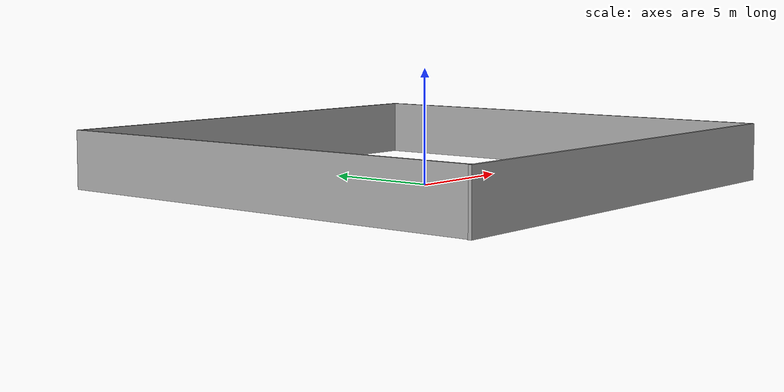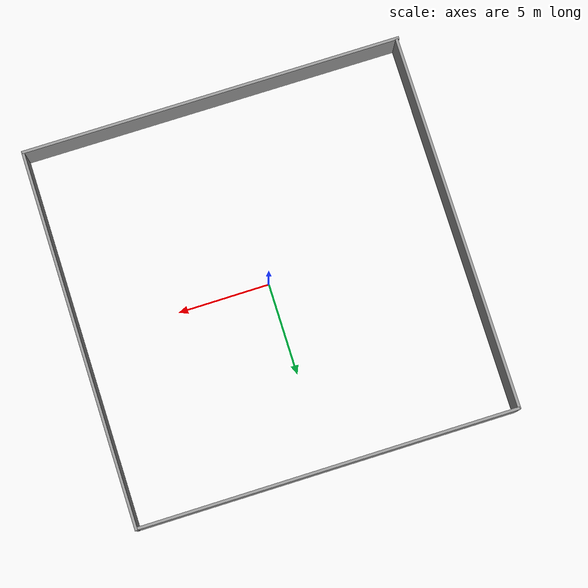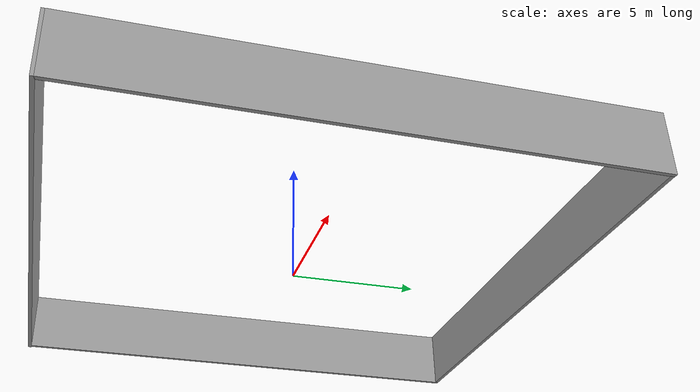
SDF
<?xml version='1.0'?>
<sdf version='1.6'>
  <model name='enclosedWalls'>
    <pose frame=''>0.000237 0.041222 0 0 -0 0</pose>
    <link name='Wall_13'>
      <collision name='Wall_13_Collision'>
        <geometry>
          <box>
            <size>20.75 0.15 2.5</size>
          </box>
        </geometry>
        <pose frame=''>0 0 1.25 0 -0 0</pose>
      </collision>
      <visual name='Wall_13_Visual'>
        <pose frame=''>0 0 1.25 0 -0 0</pose>
        <geometry>
          <box>
            <size>20.75 0.15 2.5</size>
          </box>
        </geometry>
        <material>
          <script>
            <uri>file://media/materials/scripts/gazebo.material</uri>
            <name>Gazebo/Grey</name>
          </script>
          <ambient>1 1 1 1</ambient>
        </material>
        <meta>
          <layer>0</layer>
        </meta>
      </visual>
      <pose frame=''>-0.003832 -10.2353 0 0 -0 0</pose>
    </link>
    <link name='Wall_4'>
      <collision name='Wall_4_Collision'>
        <geometry>
          <box>
            <size>20.5 0.15 2.5</size>
          </box>
        </geometry>
        <pose frame=''>0 0 1.25 0 -0 0</pose>
      </collision>
      <visual name='Wall_4_Visual'>
        <pose frame=''>0 0 1.25 0 -0 0</pose>
        <geometry>
          <box>
            <size>20.5 0.15 2.5</size>
          </box>
        </geometry>
        <material>
          <script>
            <uri>file://media/materials/scripts/gazebo.material</uri>
            <name>Gazebo/Grey</name>
          </script>
          <ambient>1 1 1 1</ambient>
        </material>
        <meta>
          <layer>0</layer>
        </meta>
      </visual>
      <pose frame=''>-10.2348 0.050116 0 0 0 -1.5708</pose>
    </link>
    <link name='Wall_6'>
      <collision name='Wall_6_Collision'>
        <geometry>
          <box>
            <size>20.5 0.15 2.5</size>
          </box>
        </geometry>
        <pose frame=''>0 0 1.25 0 -0 0</pose>
      </collision>
      <visual name='Wall_6_Visual'>
        <pose frame=''>0 0 1.25 0 -0 0</pose>
        <geometry>
          <box>
            <size>20.5 0.15 2.5</size>
          </box>
        </geometry>
        <material>
          <script>
            <uri>file://media/materials/scripts/gazebo.material</uri>
            <name>Gazebo/Grey</name>
          </script>
          <ambient>1 1 1 1</ambient>
        </material>
        <meta>
          <layer>0</layer>
        </meta>
      </visual>
      <pose frame=''>-0.006766 10.2272 0 0 -0 0</pose>
    </link>
    <link name='Wall_8'>
      <collision name='Wall_8_Collision'>
        <geometry>
          <box>
            <size>20.5 0.15 2.5</size>
          </box>
        </geometry>
        <pose frame=''>0 0 1.25 0 -0 0</pose>
      </collision>
      <visual name='Wall_8_Visual'>
        <pose frame=''>0 0 1.25 0 -0 0</pose>
        <geometry>
          <box>
            <size>20.5 0.15 2.5</size>
          </box>
        </geometry>
        <material>
          <script>
            <uri>file://media/materials/scripts/gazebo.material</uri>
            <name>Gazebo/Grey</name>
          </script>
          <ambient>1 1 1 1</ambient>
        </material>
        <meta>
          <layer>0</layer>
        </meta>
      </visual>
      <pose frame=''>10.3038 0.06031 0 0 -0 1.5708</pose>
    </link>
    <static>1</static>
  </model>
</sdf>
